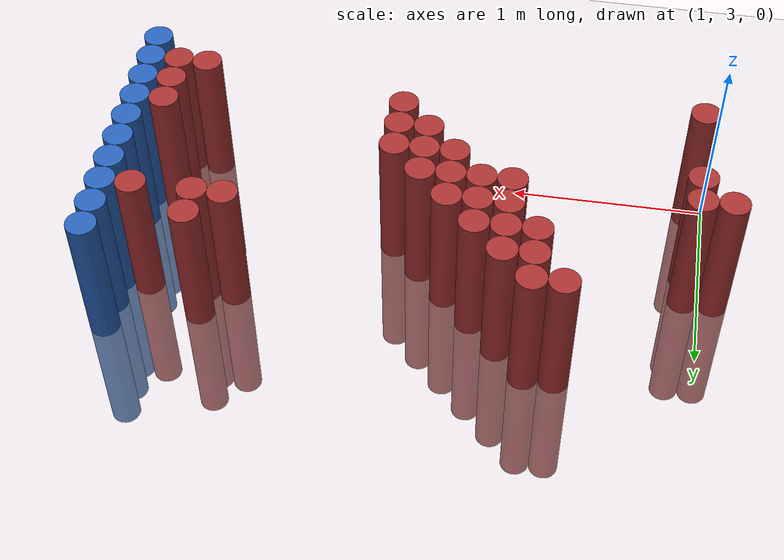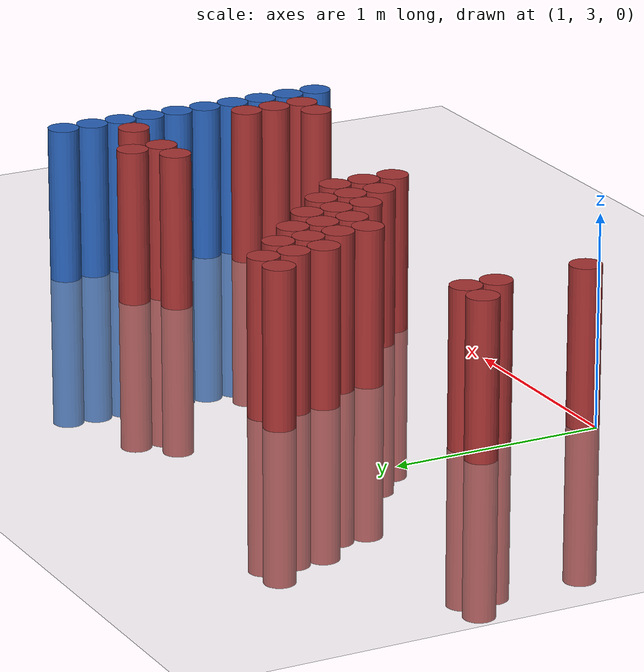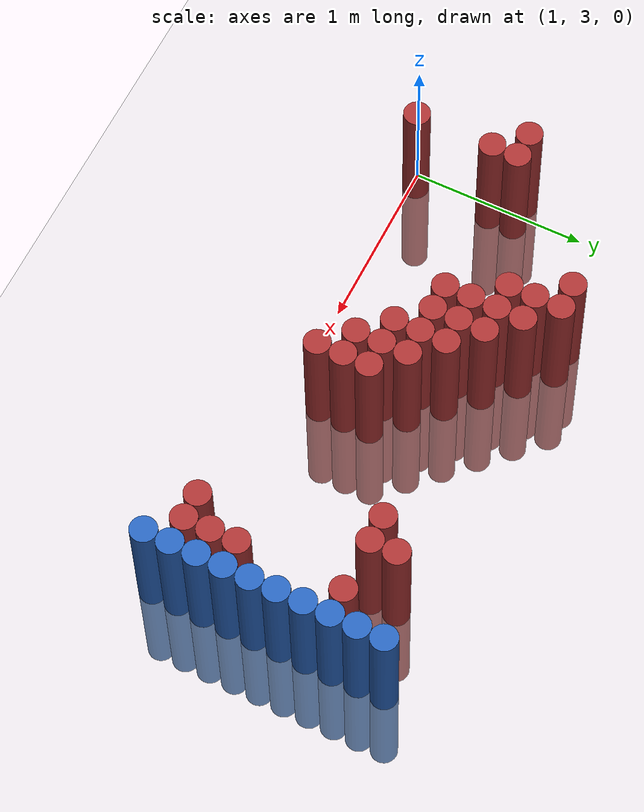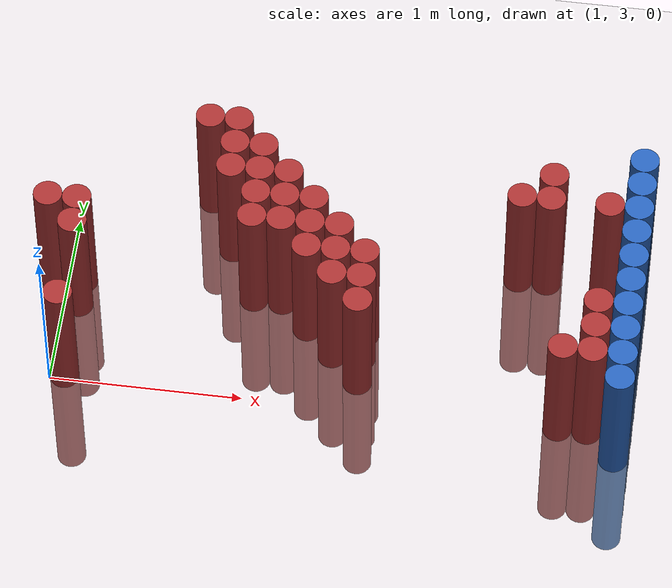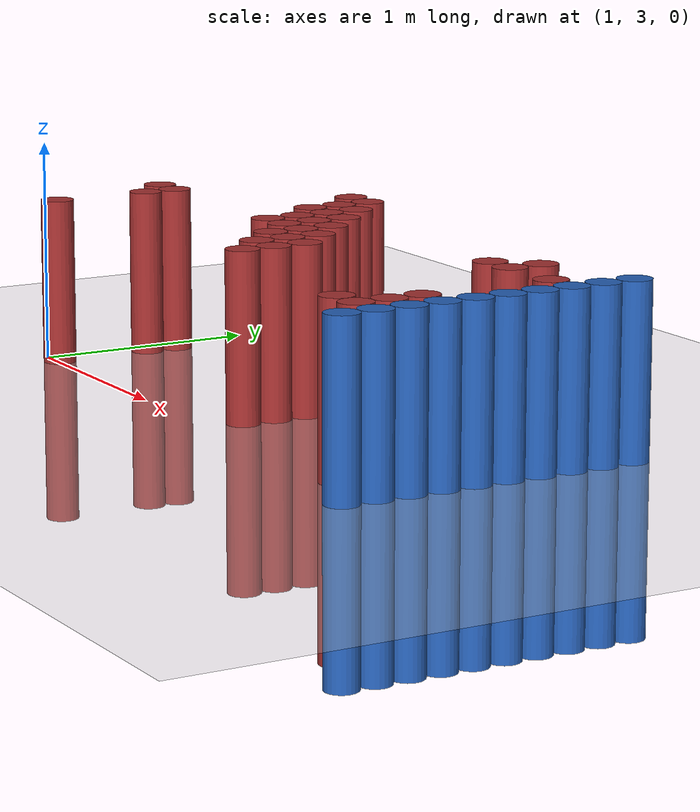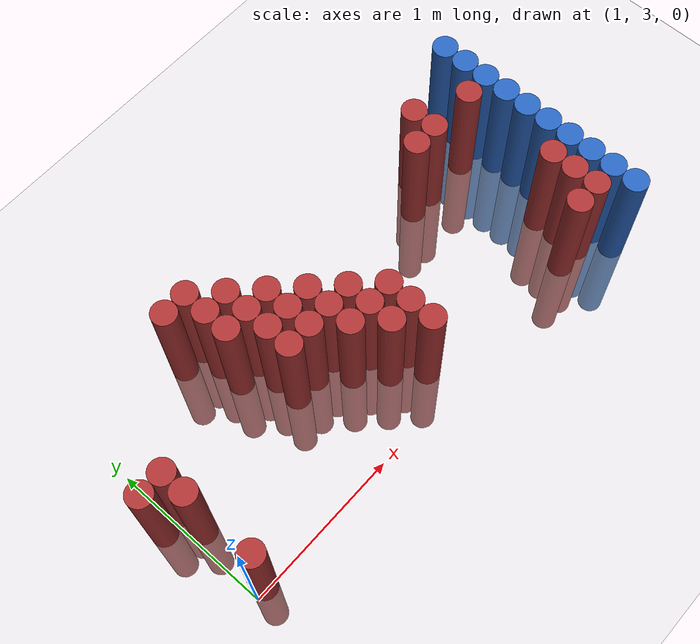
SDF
<sdf version="1.6">
 <world name="default">
  <model name="ground_plane">
   <static>1</static>
   <link name="link">
    <collision name="collision">
     <geometry><plane><normal>0 0 1</normal><size>100 100</size></plane></geometry>
     <surface><friction><ode><mu>100</mu><mu2>50</mu2></ode></friction></surface>
    </collision>
    <visual name="visual">
     <cast_shadows>0</cast_shadows>
     <geometry><plane><normal>0 0 1</normal><size>100 100</size></plane></geometry>
     <material>
      <script><uri>file://media/materials/scripts/gazebo.material</uri><name>Gazebo/Grey</name></script>
     </material>
    </visual>
   </link>
  </model>
  <model name="unit_cylinder_152">
   <static>1</static>
   <pose>3.925000 2.875000 0.000000 0.000000 0.000000 0.000000</pose>
   <link name="link">
    <inertial>
     <mass>1</mass>
     <inertia><ixx>0.145833</ixx><ixy>0</ixy><ixz>0</ixz><iyy>0.145833</iyy><iyz>0</iyz><izz>0.125</izz></inertia>
    </inertial>
    <collision name="collision">
     <geometry><cylinder><radius>0.075000</radius><length>1.5</length></cylinder></geometry>
    </collision>
    <visual name="visual">
     <geometry><cylinder><radius>0.075000</radius><length>1.5</length></cylinder></geometry>
     <material>
      <ambient>0.152000 0.379000 0.720000 1</ambient>
      <diffuse>0.152000 0.379000 0.720000 1</diffuse>
     </material>
     <material>
      <script><name>Gazebo/Grey</name><uri>file://media/materials/scripts/gazebo.material</uri></script>
     </material>
    </visual>
   </link>
  </model>
  <model name="unit_cylinder_154">
   <static>1</static>
   <pose>3.925000 3.025000 0.000000 0.000000 0.000000 0.000000</pose>
   <link name="link">
    <inertial>
     <mass>1</mass>
     <inertia><ixx>0.145833</ixx><ixy>0</ixy><ixz>0</ixz><iyy>0.145833</iyy><iyz>0</iyz><izz>0.125</izz></inertia>
    </inertial>
    <collision name="collision">
     <geometry><cylinder><radius>0.075000</radius><length>1.5</length></cylinder></geometry>
    </collision>
    <visual name="visual">
     <geometry><cylinder><radius>0.075000</radius><length>1.5</length></cylinder></geometry>
     <material>
      <ambient>0.152000 0.379000 0.720000 1</ambient>
      <diffuse>0.152000 0.379000 0.720000 1</diffuse>
     </material>
     <material>
      <script><name>Gazebo/Grey</name><uri>file://media/materials/scripts/gazebo.material</uri></script>
     </material>
    </visual>
   </link>
  </model>
  <model name="unit_cylinder_156">
   <static>1</static>
   <pose>3.925000 3.175000 0.000000 0.000000 0.000000 0.000000</pose>
   <link name="link">
    <inertial>
     <mass>1</mass>
     <inertia><ixx>0.145833</ixx><ixy>0</ixy><ixz>0</ixz><iyy>0.145833</iyy><iyz>0</iyz><izz>0.125</izz></inertia>
    </inertial>
    <collision name="collision">
     <geometry><cylinder><radius>0.075000</radius><length>1.5</length></cylinder></geometry>
    </collision>
    <visual name="visual">
     <geometry><cylinder><radius>0.075000</radius><length>1.5</length></cylinder></geometry>
     <material>
      <ambient>0.152000 0.379000 0.720000 1</ambient>
      <diffuse>0.152000 0.379000 0.720000 1</diffuse>
     </material>
     <material>
      <script><name>Gazebo/Grey</name><uri>file://media/materials/scripts/gazebo.material</uri></script>
     </material>
    </visual>
   </link>
  </model>
  <model name="unit_cylinder_158">
   <static>1</static>
   <pose>3.925000 3.325000 0.000000 0.000000 0.000000 0.000000</pose>
   <link name="link">
    <inertial>
     <mass>1</mass>
     <inertia><ixx>0.145833</ixx><ixy>0</ixy><ixz>0</ixz><iyy>0.145833</iyy><iyz>0</iyz><izz>0.125</izz></inertia>
    </inertial>
    <collision name="collision">
     <geometry><cylinder><radius>0.075000</radius><length>1.5</length></cylinder></geometry>
    </collision>
    <visual name="visual">
     <geometry><cylinder><radius>0.075000</radius><length>1.5</length></cylinder></geometry>
     <material>
      <ambient>0.152000 0.379000 0.720000 1</ambient>
      <diffuse>0.152000 0.379000 0.720000 1</diffuse>
     </material>
     <material>
      <script><name>Gazebo/Grey</name><uri>file://media/materials/scripts/gazebo.material</uri></script>
     </material>
    </visual>
   </link>
  </model>
  <model name="unit_cylinder_160">
   <static>1</static>
   <pose>3.925000 3.475000 0.000000 0.000000 0.000000 0.000000</pose>
   <link name="link">
    <inertial>
     <mass>1</mass>
     <inertia><ixx>0.145833</ixx><ixy>0</ixy><ixz>0</ixz><iyy>0.145833</iyy><iyz>0</iyz><izz>0.125</izz></inertia>
    </inertial>
    <collision name="collision">
     <geometry><cylinder><radius>0.075000</radius><length>1.5</length></cylinder></geometry>
    </collision>
    <visual name="visual">
     <geometry><cylinder><radius>0.075000</radius><length>1.5</length></cylinder></geometry>
     <material>
      <ambient>0.152000 0.379000 0.720000 1</ambient>
      <diffuse>0.152000 0.379000 0.720000 1</diffuse>
     </material>
     <material>
      <script><name>Gazebo/Grey</name><uri>file://media/materials/scripts/gazebo.material</uri></script>
     </material>
    </visual>
   </link>
  </model>
  <model name="unit_cylinder_162">
   <static>1</static>
   <pose>3.925000 3.625000 0.000000 0.000000 0.000000 0.000000</pose>
   <link name="link">
    <inertial>
     <mass>1</mass>
     <inertia><ixx>0.145833</ixx><ixy>0</ixy><ixz>0</ixz><iyy>0.145833</iyy><iyz>0</iyz><izz>0.125</izz></inertia>
    </inertial>
    <collision name="collision">
     <geometry><cylinder><radius>0.075000</radius><length>1.5</length></cylinder></geometry>
    </collision>
    <visual name="visual">
     <geometry><cylinder><radius>0.075000</radius><length>1.5</length></cylinder></geometry>
     <material>
      <ambient>0.152000 0.379000 0.720000 1</ambient>
      <diffuse>0.152000 0.379000 0.720000 1</diffuse>
     </material>
     <material>
      <script><name>Gazebo/Grey</name><uri>file://media/materials/scripts/gazebo.material</uri></script>
     </material>
    </visual>
   </link>
  </model>
  <model name="unit_cylinder_164">
   <static>1</static>
   <pose>3.925000 3.775000 0.000000 0.000000 0.000000 0.000000</pose>
   <link name="link">
    <inertial>
     <mass>1</mass>
     <inertia><ixx>0.145833</ixx><ixy>0</ixy><ixz>0</ixz><iyy>0.145833</iyy><iyz>0</iyz><izz>0.125</izz></inertia>
    </inertial>
    <collision name="collision">
     <geometry><cylinder><radius>0.075000</radius><length>1.5</length></cylinder></geometry>
    </collision>
    <visual name="visual">
     <geometry><cylinder><radius>0.075000</radius><length>1.5</length></cylinder></geometry>
     <material>
      <ambient>0.152000 0.379000 0.720000 1</ambient>
      <diffuse>0.152000 0.379000 0.720000 1</diffuse>
     </material>
     <material>
      <script><name>Gazebo/Grey</name><uri>file://media/materials/scripts/gazebo.material</uri></script>
     </material>
    </visual>
   </link>
  </model>
  <model name="unit_cylinder_166">
   <static>1</static>
   <pose>3.925000 3.925000 0.000000 0.000000 0.000000 0.000000</pose>
   <link name="link">
    <inertial>
     <mass>1</mass>
     <inertia><ixx>0.145833</ixx><ixy>0</ixy><ixz>0</ixz><iyy>0.145833</iyy><iyz>0</iyz><izz>0.125</izz></inertia>
    </inertial>
    <collision name="collision">
     <geometry><cylinder><radius>0.075000</radius><length>1.5</length></cylinder></geometry>
    </collision>
    <visual name="visual">
     <geometry><cylinder><radius>0.075000</radius><length>1.5</length></cylinder></geometry>
     <material>
      <ambient>0.152000 0.379000 0.720000 1</ambient>
      <diffuse>0.152000 0.379000 0.720000 1</diffuse>
     </material>
     <material>
      <script><name>Gazebo/Grey</name><uri>file://media/materials/scripts/gazebo.material</uri></script>
     </material>
    </visual>
   </link>
  </model>
  <model name="unit_cylinder_168">
   <static>1</static>
   <pose>3.925000 4.075000 0.000000 0.000000 0.000000 0.000000</pose>
   <link name="link">
    <inertial>
     <mass>1</mass>
     <inertia><ixx>0.145833</ixx><ixy>0</ixy><ixz>0</ixz><iyy>0.145833</iyy><iyz>0</iyz><izz>0.125</izz></inertia>
    </inertial>
    <collision name="collision">
     <geometry><cylinder><radius>0.075000</radius><length>1.5</length></cylinder></geometry>
    </collision>
    <visual name="visual">
     <geometry><cylinder><radius>0.075000</radius><length>1.5</length></cylinder></geometry>
     <material>
      <ambient>0.152000 0.379000 0.720000 1</ambient>
      <diffuse>0.152000 0.379000 0.720000 1</diffuse>
     </material>
     <material>
      <script><name>Gazebo/Grey</name><uri>file://media/materials/scripts/gazebo.material</uri></script>
     </material>
    </visual>
   </link>
  </model>
  <model name="unit_cylinder_170">
   <static>1</static>
   <pose>3.925000 4.225000 0.000000 0.000000 0.000000 0.000000</pose>
   <link name="link">
    <inertial>
     <mass>1</mass>
     <inertia><ixx>0.145833</ixx><ixy>0</ixy><ixz>0</ixz><iyy>0.145833</iyy><iyz>0</iyz><izz>0.125</izz></inertia>
    </inertial>
    <collision name="collision">
     <geometry><cylinder><radius>0.075000</radius><length>1.5</length></cylinder></geometry>
    </collision>
    <visual name="visual">
     <geometry><cylinder><radius>0.075000</radius><length>1.5</length></cylinder></geometry>
     <material>
      <ambient>0.152000 0.379000 0.720000 1</ambient>
      <diffuse>0.152000 0.379000 0.720000 1</diffuse>
     </material>
     <material>
      <script><name>Gazebo/Grey</name><uri>file://media/materials/scripts/gazebo.material</uri></script>
     </material>
    </visual>
   </link>
  </model>
  <model name="unit_cylinder_385">
   <static>1</static>
   <pose>0.925000 3.625000 0.000000 0.000000 0.000000 0.000000</pose>
   <link name="link">
    <inertial>
     <mass>1</mass>
     <inertia><ixx>0.145833</ixx><ixy>0</ixy><ixz>0</ixz><iyy>0.145833</iyy><iyz>0</iyz><izz>0.125</izz></inertia>
    </inertial>
    <collision name="collision">
     <geometry><cylinder><radius>0.075000</radius><length>1.5</length></cylinder></geometry>
    </collision>
    <visual name="visual">
     <geometry><cylinder><radius>0.075000</radius><length>1.5</length></cylinder></geometry>
     <material>
      <ambient>0.648000 0.192000 0.192000 1</ambient>
      <diffuse>0.648000 0.192000 0.192000 1</diffuse>
     </material>
     <material>
      <script><name>Gazebo/Grey</name><uri>file://media/materials/scripts/gazebo.material</uri></script>
     </material>
    </visual>
   </link>
  </model>
  <model name="unit_cylinder_394">
   <static>1</static>
   <pose>1.075000 3.025000 0.000000 0.000000 0.000000 0.000000</pose>
   <link name="link">
    <inertial>
     <mass>1</mass>
     <inertia><ixx>0.145833</ixx><ixy>0</ixy><ixz>0</ixz><iyy>0.145833</iyy><iyz>0</iyz><izz>0.125</izz></inertia>
    </inertial>
    <collision name="collision">
     <geometry><cylinder><radius>0.075000</radius><length>1.5</length></cylinder></geometry>
    </collision>
    <visual name="visual">
     <geometry><cylinder><radius>0.075000</radius><length>1.5</length></cylinder></geometry>
     <material>
      <ambient>0.648000 0.192000 0.192000 1</ambient>
      <diffuse>0.648000 0.192000 0.192000 1</diffuse>
     </material>
     <material>
      <script><name>Gazebo/Grey</name><uri>file://media/materials/scripts/gazebo.material</uri></script>
     </material>
    </visual>
   </link>
  </model>
  <model name="unit_cylinder_395">
   <static>1</static>
   <pose>1.075000 3.475000 0.000000 0.000000 0.000000 0.000000</pose>
   <link name="link">
    <inertial>
     <mass>1</mass>
     <inertia><ixx>0.145833</ixx><ixy>0</ixy><ixz>0</ixz><iyy>0.145833</iyy><iyz>0</iyz><izz>0.125</izz></inertia>
    </inertial>
    <collision name="collision">
     <geometry><cylinder><radius>0.075000</radius><length>1.5</length></cylinder></geometry>
    </collision>
    <visual name="visual">
     <geometry><cylinder><radius>0.075000</radius><length>1.5</length></cylinder></geometry>
     <material>
      <ambient>0.648000 0.192000 0.192000 1</ambient>
      <diffuse>0.648000 0.192000 0.192000 1</diffuse>
     </material>
     <material>
      <script><name>Gazebo/Grey</name><uri>file://media/materials/scripts/gazebo.material</uri></script>
     </material>
    </visual>
   </link>
  </model>
  <model name="unit_cylinder_396">
   <static>1</static>
   <pose>1.075000 3.625000 0.000000 0.000000 0.000000 0.000000</pose>
   <link name="link">
    <inertial>
     <mass>1</mass>
     <inertia><ixx>0.145833</ixx><ixy>0</ixy><ixz>0</ixz><iyy>0.145833</iyy><iyz>0</iyz><izz>0.125</izz></inertia>
    </inertial>
    <collision name="collision">
     <geometry><cylinder><radius>0.075000</radius><length>1.5</length></cylinder></geometry>
    </collision>
    <visual name="visual">
     <geometry><cylinder><radius>0.075000</radius><length>1.5</length></cylinder></geometry>
     <material>
      <ambient>0.648000 0.192000 0.192000 1</ambient>
      <diffuse>0.648000 0.192000 0.192000 1</diffuse>
     </material>
     <material>
      <script><name>Gazebo/Grey</name><uri>file://media/materials/scripts/gazebo.material</uri></script>
     </material>
    </visual>
   </link>
  </model>
  <model name="unit_cylinder_412">
   <static>1</static>
   <pose>1.675000 4.225000 0.000000 0.000000 0.000000 0.000000</pose>
   <link name="link">
    <inertial>
     <mass>1</mass>
     <inertia><ixx>0.145833</ixx><ixy>0</ixy><ixz>0</ixz><iyy>0.145833</iyy><iyz>0</iyz><izz>0.125</izz></inertia>
    </inertial>
    <collision name="collision">
     <geometry><cylinder><radius>0.075000</radius><length>1.5</length></cylinder></geometry>
    </collision>
    <visual name="visual">
     <geometry><cylinder><radius>0.075000</radius><length>1.5</length></cylinder></geometry>
     <material>
      <ambient>0.648000 0.192000 0.192000 1</ambient>
      <diffuse>0.648000 0.192000 0.192000 1</diffuse>
     </material>
     <material>
      <script><name>Gazebo/Grey</name><uri>file://media/materials/scripts/gazebo.material</uri></script>
     </material>
    </visual>
   </link>
  </model>
  <model name="unit_cylinder_416">
   <static>1</static>
   <pose>1.825000 3.925000 0.000000 0.000000 0.000000 0.000000</pose>
   <link name="link">
    <inertial>
     <mass>1</mass>
     <inertia><ixx>0.145833</ixx><ixy>0</ixy><ixz>0</ixz><iyy>0.145833</iyy><iyz>0</iyz><izz>0.125</izz></inertia>
    </inertial>
    <collision name="collision">
     <geometry><cylinder><radius>0.075000</radius><length>1.5</length></cylinder></geometry>
    </collision>
    <visual name="visual">
     <geometry><cylinder><radius>0.075000</radius><length>1.5</length></cylinder></geometry>
     <material>
      <ambient>0.648000 0.192000 0.192000 1</ambient>
      <diffuse>0.648000 0.192000 0.192000 1</diffuse>
     </material>
     <material>
      <script><name>Gazebo/Grey</name><uri>file://media/materials/scripts/gazebo.material</uri></script>
     </material>
    </visual>
   </link>
  </model>
  <model name="unit_cylinder_417">
   <static>1</static>
   <pose>1.825000 4.075000 0.000000 0.000000 0.000000 0.000000</pose>
   <link name="link">
    <inertial>
     <mass>1</mass>
     <inertia><ixx>0.145833</ixx><ixy>0</ixy><ixz>0</ixz><iyy>0.145833</iyy><iyz>0</iyz><izz>0.125</izz></inertia>
    </inertial>
    <collision name="collision">
     <geometry><cylinder><radius>0.075000</radius><length>1.5</length></cylinder></geometry>
    </collision>
    <visual name="visual">
     <geometry><cylinder><radius>0.075000</radius><length>1.5</length></cylinder></geometry>
     <material>
      <ambient>0.648000 0.192000 0.192000 1</ambient>
      <diffuse>0.648000 0.192000 0.192000 1</diffuse>
     </material>
     <material>
      <script><name>Gazebo/Grey</name><uri>file://media/materials/scripts/gazebo.material</uri></script>
     </material>
    </visual>
   </link>
  </model>
  <model name="unit_cylinder_418">
   <static>1</static>
   <pose>1.825000 4.225000 0.000000 0.000000 0.000000 0.000000</pose>
   <link name="link">
    <inertial>
     <mass>1</mass>
     <inertia><ixx>0.145833</ixx><ixy>0</ixy><ixz>0</ixz><iyy>0.145833</iyy><iyz>0</iyz><izz>0.125</izz></inertia>
    </inertial>
    <collision name="collision">
     <geometry><cylinder><radius>0.075000</radius><length>1.5</length></cylinder></geometry>
    </collision>
    <visual name="visual">
     <geometry><cylinder><radius>0.075000</radius><length>1.5</length></cylinder></geometry>
     <material>
      <ambient>0.648000 0.192000 0.192000 1</ambient>
      <diffuse>0.648000 0.192000 0.192000 1</diffuse>
     </material>
     <material>
      <script><name>Gazebo/Grey</name><uri>file://media/materials/scripts/gazebo.material</uri></script>
     </material>
    </visual>
   </link>
  </model>
  <model name="unit_cylinder_422">
   <static>1</static>
   <pose>1.975000 3.625000 0.000000 0.000000 0.000000 0.000000</pose>
   <link name="link">
    <inertial>
     <mass>1</mass>
     <inertia><ixx>0.145833</ixx><ixy>0</ixy><ixz>0</ixz><iyy>0.145833</iyy><iyz>0</iyz><izz>0.125</izz></inertia>
    </inertial>
    <collision name="collision">
     <geometry><cylinder><radius>0.075000</radius><length>1.5</length></cylinder></geometry>
    </collision>
    <visual name="visual">
     <geometry><cylinder><radius>0.075000</radius><length>1.5</length></cylinder></geometry>
     <material>
      <ambient>0.648000 0.192000 0.192000 1</ambient>
      <diffuse>0.648000 0.192000 0.192000 1</diffuse>
     </material>
     <material>
      <script><name>Gazebo/Grey</name><uri>file://media/materials/scripts/gazebo.material</uri></script>
     </material>
    </visual>
   </link>
  </model>
  <model name="unit_cylinder_423">
   <static>1</static>
   <pose>1.975000 3.775000 0.000000 0.000000 0.000000 0.000000</pose>
   <link name="link">
    <inertial>
     <mass>1</mass>
     <inertia><ixx>0.145833</ixx><ixy>0</ixy><ixz>0</ixz><iyy>0.145833</iyy><iyz>0</iyz><izz>0.125</izz></inertia>
    </inertial>
    <collision name="collision">
     <geometry><cylinder><radius>0.075000</radius><length>1.5</length></cylinder></geometry>
    </collision>
    <visual name="visual">
     <geometry><cylinder><radius>0.075000</radius><length>1.5</length></cylinder></geometry>
     <material>
      <ambient>0.648000 0.192000 0.192000 1</ambient>
      <diffuse>0.648000 0.192000 0.192000 1</diffuse>
     </material>
     <material>
      <script><name>Gazebo/Grey</name><uri>file://media/materials/scripts/gazebo.material</uri></script>
     </material>
    </visual>
   </link>
  </model>
  <model name="unit_cylinder_424">
   <static>1</static>
   <pose>1.975000 3.925000 0.000000 0.000000 0.000000 0.000000</pose>
   <link name="link">
    <inertial>
     <mass>1</mass>
     <inertia><ixx>0.145833</ixx><ixy>0</ixy><ixz>0</ixz><iyy>0.145833</iyy><iyz>0</iyz><izz>0.125</izz></inertia>
    </inertial>
    <collision name="collision">
     <geometry><cylinder><radius>0.075000</radius><length>1.5</length></cylinder></geometry>
    </collision>
    <visual name="visual">
     <geometry><cylinder><radius>0.075000</radius><length>1.5</length></cylinder></geometry>
     <material>
      <ambient>0.648000 0.192000 0.192000 1</ambient>
      <diffuse>0.648000 0.192000 0.192000 1</diffuse>
     </material>
     <material>
      <script><name>Gazebo/Grey</name><uri>file://media/materials/scripts/gazebo.material</uri></script>
     </material>
    </visual>
   </link>
  </model>
  <model name="unit_cylinder_425">
   <static>1</static>
   <pose>1.975000 4.075000 0.000000 0.000000 0.000000 0.000000</pose>
   <link name="link">
    <inertial>
     <mass>1</mass>
     <inertia><ixx>0.145833</ixx><ixy>0</ixy><ixz>0</ixz><iyy>0.145833</iyy><iyz>0</iyz><izz>0.125</izz></inertia>
    </inertial>
    <collision name="collision">
     <geometry><cylinder><radius>0.075000</radius><length>1.5</length></cylinder></geometry>
    </collision>
    <visual name="visual">
     <geometry><cylinder><radius>0.075000</radius><length>1.5</length></cylinder></geometry>
     <material>
      <ambient>0.648000 0.192000 0.192000 1</ambient>
      <diffuse>0.648000 0.192000 0.192000 1</diffuse>
     </material>
     <material>
      <script><name>Gazebo/Grey</name><uri>file://media/materials/scripts/gazebo.material</uri></script>
     </material>
    </visual>
   </link>
  </model>
  <model name="unit_cylinder_431">
   <static>1</static>
   <pose>2.125000 3.625000 0.000000 0.000000 0.000000 0.000000</pose>
   <link name="link">
    <inertial>
     <mass>1</mass>
     <inertia><ixx>0.145833</ixx><ixy>0</ixy><ixz>0</ixz><iyy>0.145833</iyy><iyz>0</iyz><izz>0.125</izz></inertia>
    </inertial>
    <collision name="collision">
     <geometry><cylinder><radius>0.075000</radius><length>1.5</length></cylinder></geometry>
    </collision>
    <visual name="visual">
     <geometry><cylinder><radius>0.075000</radius><length>1.5</length></cylinder></geometry>
     <material>
      <ambient>0.648000 0.192000 0.192000 1</ambient>
      <diffuse>0.648000 0.192000 0.192000 1</diffuse>
     </material>
     <material>
      <script><name>Gazebo/Grey</name><uri>file://media/materials/scripts/gazebo.material</uri></script>
     </material>
    </visual>
   </link>
  </model>
  <model name="unit_cylinder_432">
   <static>1</static>
   <pose>2.125000 3.775000 0.000000 0.000000 0.000000 0.000000</pose>
   <link name="link">
    <inertial>
     <mass>1</mass>
     <inertia><ixx>0.145833</ixx><ixy>0</ixy><ixz>0</ixz><iyy>0.145833</iyy><iyz>0</iyz><izz>0.125</izz></inertia>
    </inertial>
    <collision name="collision">
     <geometry><cylinder><radius>0.075000</radius><length>1.5</length></cylinder></geometry>
    </collision>
    <visual name="visual">
     <geometry><cylinder><radius>0.075000</radius><length>1.5</length></cylinder></geometry>
     <material>
      <ambient>0.648000 0.192000 0.192000 1</ambient>
      <diffuse>0.648000 0.192000 0.192000 1</diffuse>
     </material>
     <material>
      <script><name>Gazebo/Grey</name><uri>file://media/materials/scripts/gazebo.material</uri></script>
     </material>
    </visual>
   </link>
  </model>
  <model name="unit_cylinder_433">
   <static>1</static>
   <pose>2.125000 3.925000 0.000000 0.000000 0.000000 0.000000</pose>
   <link name="link">
    <inertial>
     <mass>1</mass>
     <inertia><ixx>0.145833</ixx><ixy>0</ixy><ixz>0</ixz><iyy>0.145833</iyy><iyz>0</iyz><izz>0.125</izz></inertia>
    </inertial>
    <collision name="collision">
     <geometry><cylinder><radius>0.075000</radius><length>1.5</length></cylinder></geometry>
    </collision>
    <visual name="visual">
     <geometry><cylinder><radius>0.075000</radius><length>1.5</length></cylinder></geometry>
     <material>
      <ambient>0.648000 0.192000 0.192000 1</ambient>
      <diffuse>0.648000 0.192000 0.192000 1</diffuse>
     </material>
     <material>
      <script><name>Gazebo/Grey</name><uri>file://media/materials/scripts/gazebo.material</uri></script>
     </material>
    </visual>
   </link>
  </model>
  <model name="unit_cylinder_439">
   <static>1</static>
   <pose>2.275000 3.475000 0.000000 0.000000 0.000000 0.000000</pose>
   <link name="link">
    <inertial>
     <mass>1</mass>
     <inertia><ixx>0.145833</ixx><ixy>0</ixy><ixz>0</ixz><iyy>0.145833</iyy><iyz>0</iyz><izz>0.125</izz></inertia>
    </inertial>
    <collision name="collision">
     <geometry><cylinder><radius>0.075000</radius><length>1.5</length></cylinder></geometry>
    </collision>
    <visual name="visual">
     <geometry><cylinder><radius>0.075000</radius><length>1.5</length></cylinder></geometry>
     <material>
      <ambient>0.648000 0.192000 0.192000 1</ambient>
      <diffuse>0.648000 0.192000 0.192000 1</diffuse>
     </material>
     <material>
      <script><name>Gazebo/Grey</name><uri>file://media/materials/scripts/gazebo.material</uri></script>
     </material>
    </visual>
   </link>
  </model>
  <model name="unit_cylinder_440">
   <static>1</static>
   <pose>2.275000 3.625000 0.000000 0.000000 0.000000 0.000000</pose>
   <link name="link">
    <inertial>
     <mass>1</mass>
     <inertia><ixx>0.145833</ixx><ixy>0</ixy><ixz>0</ixz><iyy>0.145833</iyy><iyz>0</iyz><izz>0.125</izz></inertia>
    </inertial>
    <collision name="collision">
     <geometry><cylinder><radius>0.075000</radius><length>1.5</length></cylinder></geometry>
    </collision>
    <visual name="visual">
     <geometry><cylinder><radius>0.075000</radius><length>1.5</length></cylinder></geometry>
     <material>
      <ambient>0.648000 0.192000 0.192000 1</ambient>
      <diffuse>0.648000 0.192000 0.192000 1</diffuse>
     </material>
     <material>
      <script><name>Gazebo/Grey</name><uri>file://media/materials/scripts/gazebo.material</uri></script>
     </material>
    </visual>
   </link>
  </model>
  <model name="unit_cylinder_441">
   <static>1</static>
   <pose>2.275000 3.775000 0.000000 0.000000 0.000000 0.000000</pose>
   <link name="link">
    <inertial>
     <mass>1</mass>
     <inertia><ixx>0.145833</ixx><ixy>0</ixy><ixz>0</ixz><iyy>0.145833</iyy><iyz>0</iyz><izz>0.125</izz></inertia>
    </inertial>
    <collision name="collision">
     <geometry><cylinder><radius>0.075000</radius><length>1.5</length></cylinder></geometry>
    </collision>
    <visual name="visual">
     <geometry><cylinder><radius>0.075000</radius><length>1.5</length></cylinder></geometry>
     <material>
      <ambient>0.648000 0.192000 0.192000 1</ambient>
      <diffuse>0.648000 0.192000 0.192000 1</diffuse>
     </material>
     <material>
      <script><name>Gazebo/Grey</name><uri>file://media/materials/scripts/gazebo.material</uri></script>
     </material>
    </visual>
   </link>
  </model>
  <model name="unit_cylinder_445">
   <static>1</static>
   <pose>2.425000 3.325000 0.000000 0.000000 0.000000 0.000000</pose>
   <link name="link">
    <inertial>
     <mass>1</mass>
     <inertia><ixx>0.145833</ixx><ixy>0</ixy><ixz>0</ixz><iyy>0.145833</iyy><iyz>0</iyz><izz>0.125</izz></inertia>
    </inertial>
    <collision name="collision">
     <geometry><cylinder><radius>0.075000</radius><length>1.5</length></cylinder></geometry>
    </collision>
    <visual name="visual">
     <geometry><cylinder><radius>0.075000</radius><length>1.5</length></cylinder></geometry>
     <material>
      <ambient>0.648000 0.192000 0.192000 1</ambient>
      <diffuse>0.648000 0.192000 0.192000 1</diffuse>
     </material>
     <material>
      <script><name>Gazebo/Grey</name><uri>file://media/materials/scripts/gazebo.material</uri></script>
     </material>
    </visual>
   </link>
  </model>
  <model name="unit_cylinder_446">
   <static>1</static>
   <pose>2.425000 3.475000 0.000000 0.000000 0.000000 0.000000</pose>
   <link name="link">
    <inertial>
     <mass>1</mass>
     <inertia><ixx>0.145833</ixx><ixy>0</ixy><ixz>0</ixz><iyy>0.145833</iyy><iyz>0</iyz><izz>0.125</izz></inertia>
    </inertial>
    <collision name="collision">
     <geometry><cylinder><radius>0.075000</radius><length>1.5</length></cylinder></geometry>
    </collision>
    <visual name="visual">
     <geometry><cylinder><radius>0.075000</radius><length>1.5</length></cylinder></geometry>
     <material>
      <ambient>0.648000 0.192000 0.192000 1</ambient>
      <diffuse>0.648000 0.192000 0.192000 1</diffuse>
     </material>
     <material>
      <script><name>Gazebo/Grey</name><uri>file://media/materials/scripts/gazebo.material</uri></script>
     </material>
    </visual>
   </link>
  </model>
  <model name="unit_cylinder_447">
   <static>1</static>
   <pose>2.425000 3.625000 0.000000 0.000000 0.000000 0.000000</pose>
   <link name="link">
    <inertial>
     <mass>1</mass>
     <inertia><ixx>0.145833</ixx><ixy>0</ixy><ixz>0</ixz><iyy>0.145833</iyy><iyz>0</iyz><izz>0.125</izz></inertia>
    </inertial>
    <collision name="collision">
     <geometry><cylinder><radius>0.075000</radius><length>1.5</length></cylinder></geometry>
    </collision>
    <visual name="visual">
     <geometry><cylinder><radius>0.075000</radius><length>1.5</length></cylinder></geometry>
     <material>
      <ambient>0.648000 0.192000 0.192000 1</ambient>
      <diffuse>0.648000 0.192000 0.192000 1</diffuse>
     </material>
     <material>
      <script><name>Gazebo/Grey</name><uri>file://media/materials/scripts/gazebo.material</uri></script>
     </material>
    </visual>
   </link>
  </model>
  <model name="unit_cylinder_450">
   <static>1</static>
   <pose>2.575000 3.175000 0.000000 0.000000 0.000000 0.000000</pose>
   <link name="link">
    <inertial>
     <mass>1</mass>
     <inertia><ixx>0.145833</ixx><ixy>0</ixy><ixz>0</ixz><iyy>0.145833</iyy><iyz>0</iyz><izz>0.125</izz></inertia>
    </inertial>
    <collision name="collision">
     <geometry><cylinder><radius>0.075000</radius><length>1.5</length></cylinder></geometry>
    </collision>
    <visual name="visual">
     <geometry><cylinder><radius>0.075000</radius><length>1.5</length></cylinder></geometry>
     <material>
      <ambient>0.648000 0.192000 0.192000 1</ambient>
      <diffuse>0.648000 0.192000 0.192000 1</diffuse>
     </material>
     <material>
      <script><name>Gazebo/Grey</name><uri>file://media/materials/scripts/gazebo.material</uri></script>
     </material>
    </visual>
   </link>
  </model>
  <model name="unit_cylinder_451">
   <static>1</static>
   <pose>2.575000 3.325000 0.000000 0.000000 0.000000 0.000000</pose>
   <link name="link">
    <inertial>
     <mass>1</mass>
     <inertia><ixx>0.145833</ixx><ixy>0</ixy><ixz>0</ixz><iyy>0.145833</iyy><iyz>0</iyz><izz>0.125</izz></inertia>
    </inertial>
    <collision name="collision">
     <geometry><cylinder><radius>0.075000</radius><length>1.5</length></cylinder></geometry>
    </collision>
    <visual name="visual">
     <geometry><cylinder><radius>0.075000</radius><length>1.5</length></cylinder></geometry>
     <material>
      <ambient>0.648000 0.192000 0.192000 1</ambient>
      <diffuse>0.648000 0.192000 0.192000 1</diffuse>
     </material>
     <material>
      <script><name>Gazebo/Grey</name><uri>file://media/materials/scripts/gazebo.material</uri></script>
     </material>
    </visual>
   </link>
  </model>
  <model name="unit_cylinder_452">
   <static>1</static>
   <pose>2.575000 3.475000 0.000000 0.000000 0.000000 0.000000</pose>
   <link name="link">
    <inertial>
     <mass>1</mass>
     <inertia><ixx>0.145833</ixx><ixy>0</ixy><ixz>0</ixz><iyy>0.145833</iyy><iyz>0</iyz><izz>0.125</izz></inertia>
    </inertial>
    <collision name="collision">
     <geometry><cylinder><radius>0.075000</radius><length>1.5</length></cylinder></geometry>
    </collision>
    <visual name="visual">
     <geometry><cylinder><radius>0.075000</radius><length>1.5</length></cylinder></geometry>
     <material>
      <ambient>0.648000 0.192000 0.192000 1</ambient>
      <diffuse>0.648000 0.192000 0.192000 1</diffuse>
     </material>
     <material>
      <script><name>Gazebo/Grey</name><uri>file://media/materials/scripts/gazebo.material</uri></script>
     </material>
    </visual>
   </link>
  </model>
  <model name="unit_cylinder_468">
   <static>1</static>
   <pose>3.325000 3.925000 0.000000 0.000000 0.000000 0.000000</pose>
   <link name="link">
    <inertial>
     <mass>1</mass>
     <inertia><ixx>0.145833</ixx><ixy>0</ixy><ixz>0</ixz><iyy>0.145833</iyy><iyz>0</iyz><izz>0.125</izz></inertia>
    </inertial>
    <collision name="collision">
     <geometry><cylinder><radius>0.075000</radius><length>1.5</length></cylinder></geometry>
    </collision>
    <visual name="visual">
     <geometry><cylinder><radius>0.075000</radius><length>1.5</length></cylinder></geometry>
     <material>
      <ambient>0.648000 0.192000 0.192000 1</ambient>
      <diffuse>0.648000 0.192000 0.192000 1</diffuse>
     </material>
     <material>
      <script><name>Gazebo/Grey</name><uri>file://media/materials/scripts/gazebo.material</uri></script>
     </material>
    </visual>
   </link>
  </model>
  <model name="unit_cylinder_474">
   <static>1</static>
   <pose>3.475000 3.925000 0.000000 0.000000 0.000000 0.000000</pose>
   <link name="link">
    <inertial>
     <mass>1</mass>
     <inertia><ixx>0.145833</ixx><ixy>0</ixy><ixz>0</ixz><iyy>0.145833</iyy><iyz>0</iyz><izz>0.125</izz></inertia>
    </inertial>
    <collision name="collision">
     <geometry><cylinder><radius>0.075000</radius><length>1.5</length></cylinder></geometry>
    </collision>
    <visual name="visual">
     <geometry><cylinder><radius>0.075000</radius><length>1.5</length></cylinder></geometry>
     <material>
      <ambient>0.648000 0.192000 0.192000 1</ambient>
      <diffuse>0.648000 0.192000 0.192000 1</diffuse>
     </material>
     <material>
      <script><name>Gazebo/Grey</name><uri>file://media/materials/scripts/gazebo.material</uri></script>
     </material>
    </visual>
   </link>
  </model>
  <model name="unit_cylinder_475">
   <static>1</static>
   <pose>3.475000 4.075000 0.000000 0.000000 0.000000 0.000000</pose>
   <link name="link">
    <inertial>
     <mass>1</mass>
     <inertia><ixx>0.145833</ixx><ixy>0</ixy><ixz>0</ixz><iyy>0.145833</iyy><iyz>0</iyz><izz>0.125</izz></inertia>
    </inertial>
    <collision name="collision">
     <geometry><cylinder><radius>0.075000</radius><length>1.5</length></cylinder></geometry>
    </collision>
    <visual name="visual">
     <geometry><cylinder><radius>0.075000</radius><length>1.5</length></cylinder></geometry>
     <material>
      <ambient>0.648000 0.192000 0.192000 1</ambient>
      <diffuse>0.648000 0.192000 0.192000 1</diffuse>
     </material>
     <material>
      <script><name>Gazebo/Grey</name><uri>file://media/materials/scripts/gazebo.material</uri></script>
     </material>
    </visual>
   </link>
  </model>
  <model name="unit_cylinder_484">
   <static>1</static>
   <pose>3.625000 3.025000 0.000000 0.000000 0.000000 0.000000</pose>
   <link name="link">
    <inertial>
     <mass>1</mass>
     <inertia><ixx>0.145833</ixx><ixy>0</ixy><ixz>0</ixz><iyy>0.145833</iyy><iyz>0</iyz><izz>0.125</izz></inertia>
    </inertial>
    <collision name="collision">
     <geometry><cylinder><radius>0.075000</radius><length>1.5</length></cylinder></geometry>
    </collision>
    <visual name="visual">
     <geometry><cylinder><radius>0.075000</radius><length>1.5</length></cylinder></geometry>
     <material>
      <ambient>0.648000 0.192000 0.192000 1</ambient>
      <diffuse>0.648000 0.192000 0.192000 1</diffuse>
     </material>
     <material>
      <script><name>Gazebo/Grey</name><uri>file://media/materials/scripts/gazebo.material</uri></script>
     </material>
    </visual>
   </link>
  </model>
  <model name="unit_cylinder_508">
   <static>1</static>
   <pose>3.775000 3.025000 0.000000 0.000000 0.000000 0.000000</pose>
   <link name="link">
    <inertial>
     <mass>1</mass>
     <inertia><ixx>0.145833</ixx><ixy>0</ixy><ixz>0</ixz><iyy>0.145833</iyy><iyz>0</iyz><izz>0.125</izz></inertia>
    </inertial>
    <collision name="collision">
     <geometry><cylinder><radius>0.075000</radius><length>1.5</length></cylinder></geometry>
    </collision>
    <visual name="visual">
     <geometry><cylinder><radius>0.075000</radius><length>1.5</length></cylinder></geometry>
     <material>
      <ambient>0.648000 0.192000 0.192000 1</ambient>
      <diffuse>0.648000 0.192000 0.192000 1</diffuse>
     </material>
     <material>
      <script><name>Gazebo/Grey</name><uri>file://media/materials/scripts/gazebo.material</uri></script>
     </material>
    </visual>
   </link>
  </model>
  <model name="unit_cylinder_509">
   <static>1</static>
   <pose>3.775000 3.175000 0.000000 0.000000 0.000000 0.000000</pose>
   <link name="link">
    <inertial>
     <mass>1</mass>
     <inertia><ixx>0.145833</ixx><ixy>0</ixy><ixz>0</ixz><iyy>0.145833</iyy><iyz>0</iyz><izz>0.125</izz></inertia>
    </inertial>
    <collision name="collision">
     <geometry><cylinder><radius>0.075000</radius><length>1.5</length></cylinder></geometry>
    </collision>
    <visual name="visual">
     <geometry><cylinder><radius>0.075000</radius><length>1.5</length></cylinder></geometry>
     <material>
      <ambient>0.648000 0.192000 0.192000 1</ambient>
      <diffuse>0.648000 0.192000 0.192000 1</diffuse>
     </material>
     <material>
      <script><name>Gazebo/Grey</name><uri>file://media/materials/scripts/gazebo.material</uri></script>
     </material>
    </visual>
   </link>
  </model>
  <model name="unit_cylinder_510">
   <static>1</static>
   <pose>3.775000 3.325000 0.000000 0.000000 0.000000 0.000000</pose>
   <link name="link">
    <inertial>
     <mass>1</mass>
     <inertia><ixx>0.145833</ixx><ixy>0</ixy><ixz>0</ixz><iyy>0.145833</iyy><iyz>0</iyz><izz>0.125</izz></inertia>
    </inertial>
    <collision name="collision">
     <geometry><cylinder><radius>0.075000</radius><length>1.5</length></cylinder></geometry>
    </collision>
    <visual name="visual">
     <geometry><cylinder><radius>0.075000</radius><length>1.5</length></cylinder></geometry>
     <material>
      <ambient>0.648000 0.192000 0.192000 1</ambient>
      <diffuse>0.648000 0.192000 0.192000 1</diffuse>
     </material>
     <material>
      <script><name>Gazebo/Grey</name><uri>file://media/materials/scripts/gazebo.material</uri></script>
     </material>
    </visual>
   </link>
  </model>
  <model name="unit_cylinder_511">
   <static>1</static>
   <pose>3.775000 3.925000 0.000000 0.000000 0.000000 0.000000</pose>
   <link name="link">
    <inertial>
     <mass>1</mass>
     <inertia><ixx>0.145833</ixx><ixy>0</ixy><ixz>0</ixz><iyy>0.145833</iyy><iyz>0</iyz><izz>0.125</izz></inertia>
    </inertial>
    <collision name="collision">
     <geometry><cylinder><radius>0.075000</radius><length>1.5</length></cylinder></geometry>
    </collision>
    <visual name="visual">
     <geometry><cylinder><radius>0.075000</radius><length>1.5</length></cylinder></geometry>
     <material>
      <ambient>0.648000 0.192000 0.192000 1</ambient>
      <diffuse>0.648000 0.192000 0.192000 1</diffuse>
     </material>
     <material>
      <script><name>Gazebo/Grey</name><uri>file://media/materials/scripts/gazebo.material</uri></script>
     </material>
    </visual>
   </link>
  </model>
  <model name="unit_cylinder_550">
   <static>1</static>
   <pose>3.925000 2.875000 0.000000 0.000000 0.000000 0.000000</pose>
   <link name="link">
    <inertial>
     <mass>1</mass>
     <inertia><ixx>0.145833</ixx><ixy>0</ixy><ixz>0</ixz><iyy>0.145833</iyy><iyz>0</iyz><izz>0.125</izz></inertia>
    </inertial>
    <collision name="collision">
     <geometry><cylinder><radius>0.075000</radius><length>1.5</length></cylinder></geometry>
    </collision>
    <visual name="visual">
     <geometry><cylinder><radius>0.075000</radius><length>1.5</length></cylinder></geometry>
     <material>
      <ambient>0.152000 0.379000 0.720000 1</ambient>
      <diffuse>0.152000 0.379000 0.720000 1</diffuse>
     </material>
     <material>
      <script><name>Gazebo/Grey</name><uri>file://media/materials/scripts/gazebo.material</uri></script>
     </material>
    </visual>
   </link>
  </model>
  <model name="unit_cylinder_551">
   <static>1</static>
   <pose>3.925000 3.025000 0.000000 0.000000 0.000000 0.000000</pose>
   <link name="link">
    <inertial>
     <mass>1</mass>
     <inertia><ixx>0.145833</ixx><ixy>0</ixy><ixz>0</ixz><iyy>0.145833</iyy><iyz>0</iyz><izz>0.125</izz></inertia>
    </inertial>
    <collision name="collision">
     <geometry><cylinder><radius>0.075000</radius><length>1.5</length></cylinder></geometry>
    </collision>
    <visual name="visual">
     <geometry><cylinder><radius>0.075000</radius><length>1.5</length></cylinder></geometry>
     <material>
      <ambient>0.152000 0.379000 0.720000 1</ambient>
      <diffuse>0.152000 0.379000 0.720000 1</diffuse>
     </material>
     <material>
      <script><name>Gazebo/Grey</name><uri>file://media/materials/scripts/gazebo.material</uri></script>
     </material>
    </visual>
   </link>
  </model>
  <model name="unit_cylinder_552">
   <static>1</static>
   <pose>3.925000 3.175000 0.000000 0.000000 0.000000 0.000000</pose>
   <link name="link">
    <inertial>
     <mass>1</mass>
     <inertia><ixx>0.145833</ixx><ixy>0</ixy><ixz>0</ixz><iyy>0.145833</iyy><iyz>0</iyz><izz>0.125</izz></inertia>
    </inertial>
    <collision name="collision">
     <geometry><cylinder><radius>0.075000</radius><length>1.5</length></cylinder></geometry>
    </collision>
    <visual name="visual">
     <geometry><cylinder><radius>0.075000</radius><length>1.5</length></cylinder></geometry>
     <material>
      <ambient>0.152000 0.379000 0.720000 1</ambient>
      <diffuse>0.152000 0.379000 0.720000 1</diffuse>
     </material>
     <material>
      <script><name>Gazebo/Grey</name><uri>file://media/materials/scripts/gazebo.material</uri></script>
     </material>
    </visual>
   </link>
  </model>
  <model name="unit_cylinder_553">
   <static>1</static>
   <pose>3.925000 3.325000 0.000000 0.000000 0.000000 0.000000</pose>
   <link name="link">
    <inertial>
     <mass>1</mass>
     <inertia><ixx>0.145833</ixx><ixy>0</ixy><ixz>0</ixz><iyy>0.145833</iyy><iyz>0</iyz><izz>0.125</izz></inertia>
    </inertial>
    <collision name="collision">
     <geometry><cylinder><radius>0.075000</radius><length>1.5</length></cylinder></geometry>
    </collision>
    <visual name="visual">
     <geometry><cylinder><radius>0.075000</radius><length>1.5</length></cylinder></geometry>
     <material>
      <ambient>0.152000 0.379000 0.720000 1</ambient>
      <diffuse>0.152000 0.379000 0.720000 1</diffuse>
     </material>
     <material>
      <script><name>Gazebo/Grey</name><uri>file://media/materials/scripts/gazebo.material</uri></script>
     </material>
    </visual>
   </link>
  </model>
  <model name="unit_cylinder_554">
   <static>1</static>
   <pose>3.925000 3.475000 0.000000 0.000000 0.000000 0.000000</pose>
   <link name="link">
    <inertial>
     <mass>1</mass>
     <inertia><ixx>0.145833</ixx><ixy>0</ixy><ixz>0</ixz><iyy>0.145833</iyy><iyz>0</iyz><izz>0.125</izz></inertia>
    </inertial>
    <collision name="collision">
     <geometry><cylinder><radius>0.075000</radius><length>1.5</length></cylinder></geometry>
    </collision>
    <visual name="visual">
     <geometry><cylinder><radius>0.075000</radius><length>1.5</length></cylinder></geometry>
     <material>
      <ambient>0.152000 0.379000 0.720000 1</ambient>
      <diffuse>0.152000 0.379000 0.720000 1</diffuse>
     </material>
     <material>
      <script><name>Gazebo/Grey</name><uri>file://media/materials/scripts/gazebo.material</uri></script>
     </material>
    </visual>
   </link>
  </model>
  <model name="unit_cylinder_555">
   <static>1</static>
   <pose>3.925000 3.625000 0.000000 0.000000 0.000000 0.000000</pose>
   <link name="link">
    <inertial>
     <mass>1</mass>
     <inertia><ixx>0.145833</ixx><ixy>0</ixy><ixz>0</ixz><iyy>0.145833</iyy><iyz>0</iyz><izz>0.125</izz></inertia>
    </inertial>
    <collision name="collision">
     <geometry><cylinder><radius>0.075000</radius><length>1.5</length></cylinder></geometry>
    </collision>
    <visual name="visual">
     <geometry><cylinder><radius>0.075000</radius><length>1.5</length></cylinder></geometry>
     <material>
      <ambient>0.152000 0.379000 0.720000 1</ambient>
      <diffuse>0.152000 0.379000 0.720000 1</diffuse>
     </material>
     <material>
      <script><name>Gazebo/Grey</name><uri>file://media/materials/scripts/gazebo.material</uri></script>
     </material>
    </visual>
   </link>
  </model>
  <model name="unit_cylinder_556">
   <static>1</static>
   <pose>3.925000 3.775000 0.000000 0.000000 0.000000 0.000000</pose>
   <link name="link">
    <inertial>
     <mass>1</mass>
     <inertia><ixx>0.145833</ixx><ixy>0</ixy><ixz>0</ixz><iyy>0.145833</iyy><iyz>0</iyz><izz>0.125</izz></inertia>
    </inertial>
    <collision name="collision">
     <geometry><cylinder><radius>0.075000</radius><length>1.5</length></cylinder></geometry>
    </collision>
    <visual name="visual">
     <geometry><cylinder><radius>0.075000</radius><length>1.5</length></cylinder></geometry>
     <material>
      <ambient>0.152000 0.379000 0.720000 1</ambient>
      <diffuse>0.152000 0.379000 0.720000 1</diffuse>
     </material>
     <material>
      <script><name>Gazebo/Grey</name><uri>file://media/materials/scripts/gazebo.material</uri></script>
     </material>
    </visual>
   </link>
  </model>
  <model name="unit_cylinder_557">
   <static>1</static>
   <pose>3.925000 3.925000 0.000000 0.000000 0.000000 0.000000</pose>
   <link name="link">
    <inertial>
     <mass>1</mass>
     <inertia><ixx>0.145833</ixx><ixy>0</ixy><ixz>0</ixz><iyy>0.145833</iyy><iyz>0</iyz><izz>0.125</izz></inertia>
    </inertial>
    <collision name="collision">
     <geometry><cylinder><radius>0.075000</radius><length>1.5</length></cylinder></geometry>
    </collision>
    <visual name="visual">
     <geometry><cylinder><radius>0.075000</radius><length>1.5</length></cylinder></geometry>
     <material>
      <ambient>0.152000 0.379000 0.720000 1</ambient>
      <diffuse>0.152000 0.379000 0.720000 1</diffuse>
     </material>
     <material>
      <script><name>Gazebo/Grey</name><uri>file://media/materials/scripts/gazebo.material</uri></script>
     </material>
    </visual>
   </link>
  </model>
  <model name="unit_cylinder_558">
   <static>1</static>
   <pose>3.925000 4.075000 0.000000 0.000000 0.000000 0.000000</pose>
   <link name="link">
    <inertial>
     <mass>1</mass>
     <inertia><ixx>0.145833</ixx><ixy>0</ixy><ixz>0</ixz><iyy>0.145833</iyy><iyz>0</iyz><izz>0.125</izz></inertia>
    </inertial>
    <collision name="collision">
     <geometry><cylinder><radius>0.075000</radius><length>1.5</length></cylinder></geometry>
    </collision>
    <visual name="visual">
     <geometry><cylinder><radius>0.075000</radius><length>1.5</length></cylinder></geometry>
     <material>
      <ambient>0.152000 0.379000 0.720000 1</ambient>
      <diffuse>0.152000 0.379000 0.720000 1</diffuse>
     </material>
     <material>
      <script><name>Gazebo/Grey</name><uri>file://media/materials/scripts/gazebo.material</uri></script>
     </material>
    </visual>
   </link>
  </model>
 </world>
</sdf>
